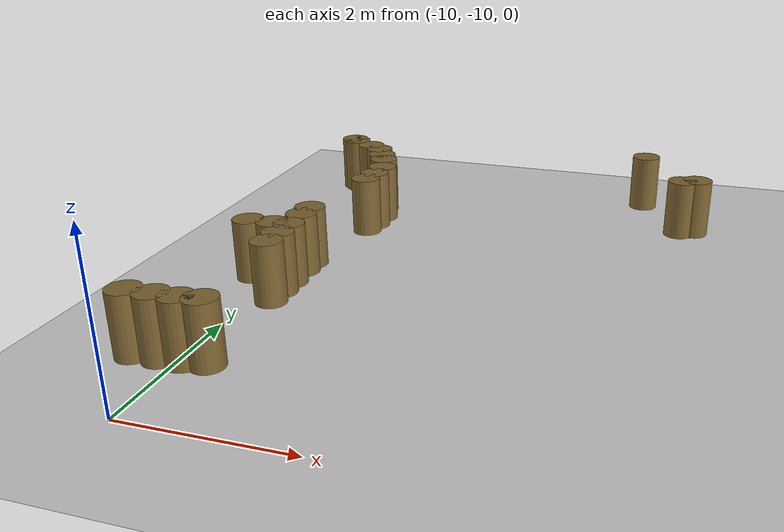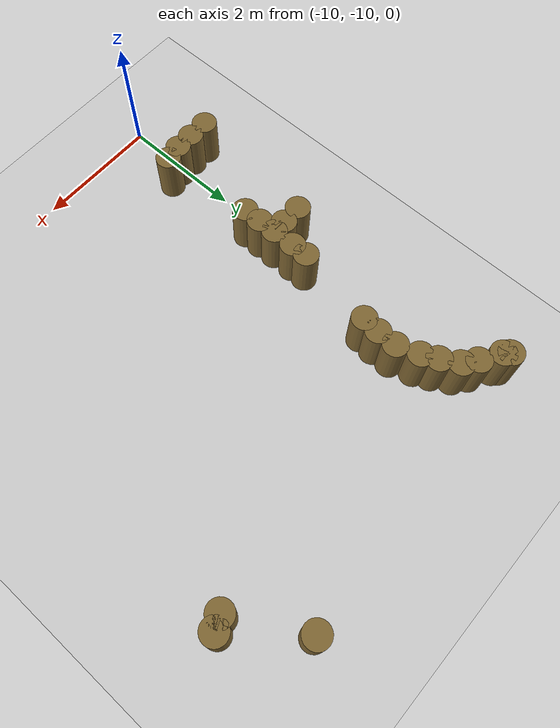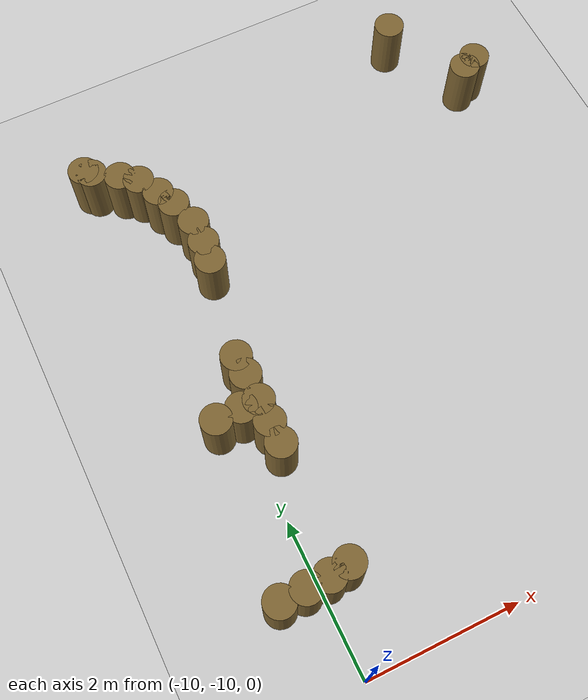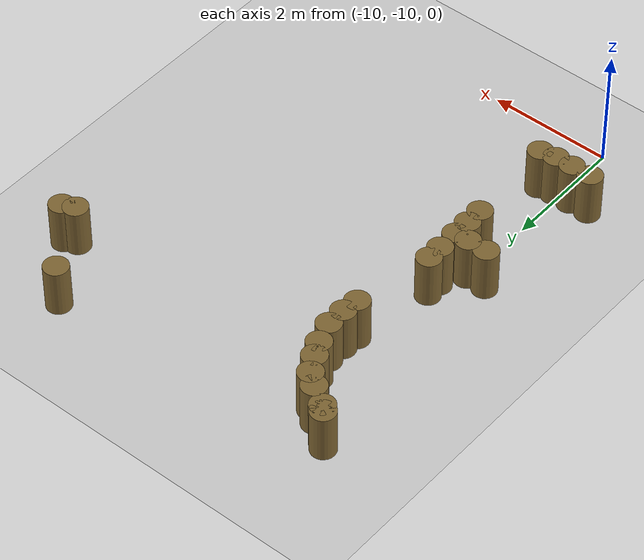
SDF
<sdf version="1.7">
 <world name="default">
  <model name="ground_plane">
   <static>1</static>
   <link name="link">
    <collision name="collision">
     <geometry><plane><normal>0 0 1</normal><size>100 100</size></plane></geometry>
     <surface><friction><ode><mu>100</mu><mu2>50</mu2></ode></friction></surface>
    </collision>
    <visual name="visual">
     <cast_shadows>0</cast_shadows>
     <geometry><plane><normal>0 0 1</normal><size>100 100</size></plane></geometry>
     <material>
      <script><uri>file://media/materials/scripts/gazebo.material</uri><name>Gazebo/Grey</name></script>
     </material>
    </visual>
   </link>
  </model>
  <model name="mini_cylinder_0_clone_0_clone_clone_clone_clone_3_clone_11">
   <link name="link">
    <inertial>
     <mass>1</mass>
     <inertia><ixx>0.145833</ixx><ixy>0</ixy><ixz>0</ixz><iyy>0.145833</iyy><iyz>0</iyz><izz>0.125</izz></inertia>
    </inertial>
    <visual name="visual">
     <geometry><cylinder><radius>0.2</radius><length>0.8</length></cylinder></geometry>
     <material>
      <script><name>Gazebo/Grey</name><uri>file://media/materials/scripts/gazebo.material</uri></script>
      <shader type="vertex"><normal_map>__default__</normal_map></shader>
      <ambient>0.5 0.4 0.2 1</ambient>
      <diffuse>0.7 0.7 0.7 1</diffuse>
      <specular>0.01 0.01 0.01 1</specular>
      <emissive>0 0 0 1</emissive>
     </material>
    </visual>
    <collision name="collision">
     <geometry><cylinder><radius>0.2</radius><length>0.8</length></cylinder></geometry>
     <surface>
      <friction>
       <ode><mu>1</mu><mu2>1</mu2><fdir1>0 0 0</fdir1><slip1>0</slip1><slip2>0</slip2></ode>
       <torsional>
        <coefficient>1</coefficient>
        <patch_radius>0</patch_radius>
        <surface_radius>0</surface_radius>
        <use_patch_radius>1</use_patch_radius>
        <ode><slip>0</slip></ode>
       </torsional>
      </friction>
      <bounce><restitution_coefficient>0</restitution_coefficient><threshold>1e+06</threshold></bounce>
      <contact>
       <collide_without_contact>0</collide_without_contact>
       <collide_without_contact_bitmask>1</collide_without_contact_bitmask>
       <collide_bitmask>1</collide_bitmask>
       <ode>
        <soft_cfm>0</soft_cfm>
        <soft_erp>0.2</soft_erp>
        <kp>1e+13</kp>
        <kd>1</kd>
        <max_vel>0.01</max_vel>
        <min_depth>0</min_depth>
       </ode>
       <bullet>
        <split_impulse>1</split_impulse>
        <split_impulse_penetration_threshold>-0.01</split_impulse_penetration_threshold>
        <soft_cfm>0</soft_cfm>
        <soft_erp>0.2</soft_erp>
        <kp>1e+13</kp>
        <kd>1</kd>
       </bullet>
      </contact>
     </surface>
    </collision>
   </link>
   <static>1</static>
   <pose>-10.3827 -2.98135 0.4 0 -0 0</pose>
  </model>
  <model name="mini_cylinder_0_clone_0_clone_clone_clone_clone_3_clone_12">
   <link name="link">
    <inertial>
     <mass>1</mass>
     <inertia><ixx>0.145833</ixx><ixy>0</ixy><ixz>0</ixz><iyy>0.145833</iyy><iyz>0</iyz><izz>0.125</izz></inertia>
    </inertial>
    <visual name="visual">
     <geometry><cylinder><radius>0.2</radius><length>0.8</length></cylinder></geometry>
     <material>
      <script><name>Gazebo/Grey</name><uri>file://media/materials/scripts/gazebo.material</uri></script>
      <shader type="vertex"><normal_map>__default__</normal_map></shader>
      <ambient>0.5 0.4 0.2 1</ambient>
      <diffuse>0.7 0.7 0.7 1</diffuse>
      <specular>0.01 0.01 0.01 1</specular>
      <emissive>0 0 0 1</emissive>
     </material>
    </visual>
    <collision name="collision">
     <geometry><cylinder><radius>0.2</radius><length>0.8</length></cylinder></geometry>
     <surface>
      <friction>
       <ode><mu>1</mu><mu2>1</mu2><fdir1>0 0 0</fdir1><slip1>0</slip1><slip2>0</slip2></ode>
       <torsional>
        <coefficient>1</coefficient>
        <patch_radius>0</patch_radius>
        <surface_radius>0</surface_radius>
        <use_patch_radius>1</use_patch_radius>
        <ode><slip>0</slip></ode>
       </torsional>
      </friction>
      <bounce><restitution_coefficient>0</restitution_coefficient><threshold>1e+06</threshold></bounce>
      <contact>
       <collide_without_contact>0</collide_without_contact>
       <collide_without_contact_bitmask>1</collide_without_contact_bitmask>
       <collide_bitmask>1</collide_bitmask>
       <ode>
        <soft_cfm>0</soft_cfm>
        <soft_erp>0.2</soft_erp>
        <kp>1e+13</kp>
        <kd>1</kd>
        <max_vel>0.01</max_vel>
        <min_depth>0</min_depth>
       </ode>
       <bullet>
        <split_impulse>1</split_impulse>
        <split_impulse_penetration_threshold>-0.01</split_impulse_penetration_threshold>
        <soft_cfm>0</soft_cfm>
        <soft_erp>0.2</soft_erp>
        <kp>1e+13</kp>
        <kd>1</kd>
       </bullet>
      </contact>
     </surface>
    </collision>
   </link>
   <static>1</static>
   <pose>-10.4606 -2.90239 0.4 0 -0 0</pose>
  </model>
  <model name="mini_cylinder_0_clone_0_clone_clone_clone_clone_3_clone_13">
   <link name="link">
    <inertial>
     <mass>1</mass>
     <inertia><ixx>0.145833</ixx><ixy>0</ixy><ixz>0</ixz><iyy>0.145833</iyy><iyz>0</iyz><izz>0.125</izz></inertia>
    </inertial>
    <visual name="visual">
     <geometry><cylinder><radius>0.2</radius><length>0.8</length></cylinder></geometry>
     <material>
      <script><name>Gazebo/Grey</name><uri>file://media/materials/scripts/gazebo.material</uri></script>
      <shader type="vertex"><normal_map>__default__</normal_map></shader>
      <ambient>0.5 0.4 0.2 1</ambient>
      <diffuse>0.7 0.7 0.7 1</diffuse>
      <specular>0.01 0.01 0.01 1</specular>
      <emissive>0 0 0 1</emissive>
     </material>
    </visual>
    <collision name="collision">
     <geometry><cylinder><radius>0.2</radius><length>0.8</length></cylinder></geometry>
     <surface>
      <friction>
       <ode><mu>1</mu><mu2>1</mu2><fdir1>0 0 0</fdir1><slip1>0</slip1><slip2>0</slip2></ode>
       <torsional>
        <coefficient>1</coefficient>
        <patch_radius>0</patch_radius>
        <surface_radius>0</surface_radius>
        <use_patch_radius>1</use_patch_radius>
        <ode><slip>0</slip></ode>
       </torsional>
      </friction>
      <bounce><restitution_coefficient>0</restitution_coefficient><threshold>1e+06</threshold></bounce>
      <contact>
       <collide_without_contact>0</collide_without_contact>
       <collide_without_contact_bitmask>1</collide_without_contact_bitmask>
       <collide_bitmask>1</collide_bitmask>
       <ode>
        <soft_cfm>0</soft_cfm>
        <soft_erp>0.2</soft_erp>
        <kp>1e+13</kp>
        <kd>1</kd>
        <max_vel>0.01</max_vel>
        <min_depth>0</min_depth>
       </ode>
       <bullet>
        <split_impulse>1</split_impulse>
        <split_impulse_penetration_threshold>-0.01</split_impulse_penetration_threshold>
        <soft_cfm>0</soft_cfm>
        <soft_erp>0.2</soft_erp>
        <kp>1e+13</kp>
        <kd>1</kd>
       </bullet>
      </contact>
     </surface>
    </collision>
   </link>
   <static>1</static>
   <pose>-10.069 -3.1775 0.4 0 -0 0</pose>
  </model>
  <model name="mini_cylinder_0_clone_0_clone_clone_clone_clone_3_clone_14">
   <link name="link">
    <inertial>
     <mass>1</mass>
     <inertia><ixx>0.145833</ixx><ixy>0</ixy><ixz>0</ixz><iyy>0.145833</iyy><iyz>0</iyz><izz>0.125</izz></inertia>
    </inertial>
    <visual name="visual">
     <geometry><cylinder><radius>0.2</radius><length>0.8</length></cylinder></geometry>
     <material>
      <script><name>Gazebo/Grey</name><uri>file://media/materials/scripts/gazebo.material</uri></script>
      <shader type="vertex"><normal_map>__default__</normal_map></shader>
      <ambient>0.5 0.4 0.2 1</ambient>
      <diffuse>0.7 0.7 0.7 1</diffuse>
      <specular>0.01 0.01 0.01 1</specular>
      <emissive>0 0 0 1</emissive>
     </material>
    </visual>
    <collision name="collision">
     <geometry><cylinder><radius>0.2</radius><length>0.8</length></cylinder></geometry>
     <surface>
      <friction>
       <ode><mu>1</mu><mu2>1</mu2><fdir1>0 0 0</fdir1><slip1>0</slip1><slip2>0</slip2></ode>
       <torsional>
        <coefficient>1</coefficient>
        <patch_radius>0</patch_radius>
        <surface_radius>0</surface_radius>
        <use_patch_radius>1</use_patch_radius>
        <ode><slip>0</slip></ode>
       </torsional>
      </friction>
      <bounce><restitution_coefficient>0</restitution_coefficient><threshold>1e+06</threshold></bounce>
      <contact>
       <collide_without_contact>0</collide_without_contact>
       <collide_without_contact_bitmask>1</collide_without_contact_bitmask>
       <collide_bitmask>1</collide_bitmask>
       <ode>
        <soft_cfm>0</soft_cfm>
        <soft_erp>0.2</soft_erp>
        <kp>1e+13</kp>
        <kd>1</kd>
        <max_vel>0.01</max_vel>
        <min_depth>0</min_depth>
       </ode>
       <bullet>
        <split_impulse>1</split_impulse>
        <split_impulse_penetration_threshold>-0.01</split_impulse_penetration_threshold>
        <soft_cfm>0</soft_cfm>
        <soft_erp>0.2</soft_erp>
        <kp>1e+13</kp>
        <kd>1</kd>
       </bullet>
      </contact>
     </surface>
    </collision>
   </link>
   <static>1</static>
   <pose>-9.87176 -3.33436 0.4 0 -0 0</pose>
  </model>
  <model name="mini_cylinder_0_clone_0_clone_clone_clone_clone_3_clone_15">
   <link name="link">
    <inertial>
     <mass>1</mass>
     <inertia><ixx>0.145833</ixx><ixy>0</ixy><ixz>0</ixz><iyy>0.145833</iyy><iyz>0</iyz><izz>0.125</izz></inertia>
    </inertial>
    <visual name="visual">
     <geometry><cylinder><radius>0.2</radius><length>0.8</length></cylinder></geometry>
     <material>
      <script><name>Gazebo/Grey</name><uri>file://media/materials/scripts/gazebo.material</uri></script>
      <shader type="vertex"><normal_map>__default__</normal_map></shader>
      <ambient>0.5 0.4 0.2 1</ambient>
      <diffuse>0.7 0.7 0.7 1</diffuse>
      <specular>0.01 0.01 0.01 1</specular>
      <emissive>0 0 0 1</emissive>
     </material>
    </visual>
    <collision name="collision">
     <geometry><cylinder><radius>0.2</radius><length>0.8</length></cylinder></geometry>
     <surface>
      <friction>
       <ode><mu>1</mu><mu2>1</mu2><fdir1>0 0 0</fdir1><slip1>0</slip1><slip2>0</slip2></ode>
       <torsional>
        <coefficient>1</coefficient>
        <patch_radius>0</patch_radius>
        <surface_radius>0</surface_radius>
        <use_patch_radius>1</use_patch_radius>
        <ode><slip>0</slip></ode>
       </torsional>
      </friction>
      <bounce><restitution_coefficient>0</restitution_coefficient><threshold>1e+06</threshold></bounce>
      <contact>
       <collide_without_contact>0</collide_without_contact>
       <collide_without_contact_bitmask>1</collide_without_contact_bitmask>
       <collide_bitmask>1</collide_bitmask>
       <ode>
        <soft_cfm>0</soft_cfm>
        <soft_erp>0.2</soft_erp>
        <kp>1e+13</kp>
        <kd>1</kd>
        <max_vel>0.01</max_vel>
        <min_depth>0</min_depth>
       </ode>
       <bullet>
        <split_impulse>1</split_impulse>
        <split_impulse_penetration_threshold>-0.01</split_impulse_penetration_threshold>
        <soft_cfm>0</soft_cfm>
        <soft_erp>0.2</soft_erp>
        <kp>1e+13</kp>
        <kd>1</kd>
       </bullet>
      </contact>
     </surface>
    </collision>
   </link>
   <static>1</static>
   <pose>-9.71455 -3.60876 0.4 0 -0 0</pose>
  </model>
  <model name="mini_cylinder_0_clone_0_clone_clone_clone_clone_3_clone_16">
   <link name="link">
    <inertial>
     <mass>1</mass>
     <inertia><ixx>0.145833</ixx><ixy>0</ixy><ixz>0</ixz><iyy>0.145833</iyy><iyz>0</iyz><izz>0.125</izz></inertia>
    </inertial>
    <visual name="visual">
     <geometry><cylinder><radius>0.2</radius><length>0.8</length></cylinder></geometry>
     <material>
      <script><name>Gazebo/Grey</name><uri>file://media/materials/scripts/gazebo.material</uri></script>
      <shader type="vertex"><normal_map>__default__</normal_map></shader>
      <ambient>0.5 0.4 0.2 1</ambient>
      <diffuse>0.7 0.7 0.7 1</diffuse>
      <specular>0.01 0.01 0.01 1</specular>
      <emissive>0 0 0 1</emissive>
     </material>
    </visual>
    <collision name="collision">
     <geometry><cylinder><radius>0.2</radius><length>0.8</length></cylinder></geometry>
     <surface>
      <friction>
       <ode><mu>1</mu><mu2>1</mu2><fdir1>0 0 0</fdir1><slip1>0</slip1><slip2>0</slip2></ode>
       <torsional>
        <coefficient>1</coefficient>
        <patch_radius>0</patch_radius>
        <surface_radius>0</surface_radius>
        <use_patch_radius>1</use_patch_radius>
        <ode><slip>0</slip></ode>
       </torsional>
      </friction>
      <bounce><restitution_coefficient>0</restitution_coefficient><threshold>1e+06</threshold></bounce>
      <contact>
       <collide_without_contact>0</collide_without_contact>
       <collide_without_contact_bitmask>1</collide_without_contact_bitmask>
       <collide_bitmask>1</collide_bitmask>
       <ode>
        <soft_cfm>0</soft_cfm>
        <soft_erp>0.2</soft_erp>
        <kp>1e+13</kp>
        <kd>1</kd>
        <max_vel>0.01</max_vel>
        <min_depth>0</min_depth>
       </ode>
       <bullet>
        <split_impulse>1</split_impulse>
        <split_impulse_penetration_threshold>-0.01</split_impulse_penetration_threshold>
        <soft_cfm>0</soft_cfm>
        <soft_erp>0.2</soft_erp>
        <kp>1e+13</kp>
        <kd>1</kd>
       </bullet>
      </contact>
     </surface>
    </collision>
   </link>
   <static>1</static>
   <pose>-9.59735 -3.84457 0.4 0 -0 0</pose>
  </model>
  <model name="mini_cylinder_0_clone_0_clone_clone_clone_clone_3_clone_17">
   <link name="link">
    <inertial>
     <mass>1</mass>
     <inertia><ixx>0.145833</ixx><ixy>0</ixy><ixz>0</ixz><iyy>0.145833</iyy><iyz>0</iyz><izz>0.125</izz></inertia>
    </inertial>
    <visual name="visual">
     <geometry><cylinder><radius>0.2</radius><length>0.8</length></cylinder></geometry>
     <material>
      <script><name>Gazebo/Grey</name><uri>file://media/materials/scripts/gazebo.material</uri></script>
      <shader type="vertex"><normal_map>__default__</normal_map></shader>
      <ambient>0.5 0.4 0.2 1</ambient>
      <diffuse>0.7 0.7 0.7 1</diffuse>
      <specular>0.01 0.01 0.01 1</specular>
      <emissive>0 0 0 1</emissive>
     </material>
    </visual>
    <collision name="collision">
     <geometry><cylinder><radius>0.2</radius><length>0.8</length></cylinder></geometry>
     <surface>
      <friction>
       <ode><mu>1</mu><mu2>1</mu2><fdir1>0 0 0</fdir1><slip1>0</slip1><slip2>0</slip2></ode>
       <torsional>
        <coefficient>1</coefficient>
        <patch_radius>0</patch_radius>
        <surface_radius>0</surface_radius>
        <use_patch_radius>1</use_patch_radius>
        <ode><slip>0</slip></ode>
       </torsional>
      </friction>
      <bounce><restitution_coefficient>0</restitution_coefficient><threshold>1e+06</threshold></bounce>
      <contact>
       <collide_without_contact>0</collide_without_contact>
       <collide_without_contact_bitmask>1</collide_without_contact_bitmask>
       <collide_bitmask>1</collide_bitmask>
       <ode>
        <soft_cfm>0</soft_cfm>
        <soft_erp>0.2</soft_erp>
        <kp>1e+13</kp>
        <kd>1</kd>
        <max_vel>0.01</max_vel>
        <min_depth>0</min_depth>
       </ode>
       <bullet>
        <split_impulse>1</split_impulse>
        <split_impulse_penetration_threshold>-0.01</split_impulse_penetration_threshold>
        <soft_cfm>0</soft_cfm>
        <soft_erp>0.2</soft_erp>
        <kp>1e+13</kp>
        <kd>1</kd>
       </bullet>
      </contact>
     </surface>
    </collision>
   </link>
   <static>1</static>
   <pose>-9.47945 -4.1983 0.4 0 -0 0</pose>
  </model>
  <model name="mini_cylinder_0_clone_0_clone_clone_clone_clone_3_clone_18">
   <link name="link">
    <inertial>
     <mass>1</mass>
     <inertia><ixx>0.145833</ixx><ixy>0</ixy><ixz>0</ixz><iyy>0.145833</iyy><iyz>0</iyz><izz>0.125</izz></inertia>
    </inertial>
    <visual name="visual">
     <geometry><cylinder><radius>0.2</radius><length>0.8</length></cylinder></geometry>
     <material>
      <script><name>Gazebo/Grey</name><uri>file://media/materials/scripts/gazebo.material</uri></script>
      <shader type="vertex"><normal_map>__default__</normal_map></shader>
      <ambient>0.5 0.4 0.2 1</ambient>
      <diffuse>0.7 0.7 0.7 1</diffuse>
      <specular>0.01 0.01 0.01 1</specular>
      <emissive>0 0 0 1</emissive>
     </material>
    </visual>
    <collision name="collision">
     <geometry><cylinder><radius>0.2</radius><length>0.8</length></cylinder></geometry>
     <surface>
      <friction>
       <ode><mu>1</mu><mu2>1</mu2><fdir1>0 0 0</fdir1><slip1>0</slip1><slip2>0</slip2></ode>
       <torsional>
        <coefficient>1</coefficient>
        <patch_radius>0</patch_radius>
        <surface_radius>0</surface_radius>
        <use_patch_radius>1</use_patch_radius>
        <ode><slip>0</slip></ode>
       </torsional>
      </friction>
      <bounce><restitution_coefficient>0</restitution_coefficient><threshold>1e+06</threshold></bounce>
      <contact>
       <collide_without_contact>0</collide_without_contact>
       <collide_without_contact_bitmask>1</collide_without_contact_bitmask>
       <collide_bitmask>1</collide_bitmask>
       <ode>
        <soft_cfm>0</soft_cfm>
        <soft_erp>0.2</soft_erp>
        <kp>1e+13</kp>
        <kd>1</kd>
        <max_vel>0.01</max_vel>
        <min_depth>0</min_depth>
       </ode>
       <bullet>
        <split_impulse>1</split_impulse>
        <split_impulse_penetration_threshold>-0.01</split_impulse_penetration_threshold>
        <soft_cfm>0</soft_cfm>
        <soft_erp>0.2</soft_erp>
        <kp>1e+13</kp>
        <kd>1</kd>
       </bullet>
      </contact>
     </surface>
    </collision>
   </link>
   <static>1</static>
   <pose>-9.47945 -4.512 0.4 0 -0 0</pose>
  </model>
  <model name="mini_cylinder_0_clone_0_clone_clone_clone_clone_3_clone_20_clone_105">
   <link name="link">
    <inertial>
     <mass>1</mass>
     <inertia><ixx>0.145833</ixx><ixy>0</ixy><ixz>0</ixz><iyy>0.145833</iyy><iyz>0</iyz><izz>0.125</izz></inertia>
    </inertial>
    <visual name="visual">
     <geometry><cylinder><radius>0.2</radius><length>0.8</length></cylinder></geometry>
     <material>
      <script><name>Gazebo/Grey</name><uri>file://media/materials/scripts/gazebo.material</uri></script>
      <shader type="vertex"><normal_map>__default__</normal_map></shader>
      <ambient>0.5 0.4 0.2 1</ambient>
      <diffuse>0.7 0.7 0.7 1</diffuse>
      <specular>0.01 0.01 0.01 1</specular>
      <emissive>0 0 0 1</emissive>
     </material>
    </visual>
    <collision name="collision">
     <geometry><cylinder><radius>0.2</radius><length>0.8</length></cylinder></geometry>
     <surface>
      <friction>
       <ode><mu>1</mu><mu2>1</mu2><fdir1>0 0 0</fdir1><slip1>0</slip1><slip2>0</slip2></ode>
       <torsional>
        <coefficient>1</coefficient>
        <patch_radius>0</patch_radius>
        <surface_radius>0</surface_radius>
        <use_patch_radius>1</use_patch_radius>
        <ode><slip>0</slip></ode>
       </torsional>
      </friction>
      <bounce><restitution_coefficient>0</restitution_coefficient><threshold>1e+06</threshold></bounce>
      <contact>
       <collide_without_contact>0</collide_without_contact>
       <collide_without_contact_bitmask>1</collide_without_contact_bitmask>
       <collide_bitmask>1</collide_bitmask>
       <ode>
        <soft_cfm>0</soft_cfm>
        <soft_erp>0.2</soft_erp>
        <kp>1e+13</kp>
        <kd>1</kd>
        <max_vel>0.01</max_vel>
        <min_depth>0</min_depth>
       </ode>
       <bullet>
        <split_impulse>1</split_impulse>
        <split_impulse_penetration_threshold>-0.01</split_impulse_penetration_threshold>
        <soft_cfm>0</soft_cfm>
        <soft_erp>0.2</soft_erp>
        <kp>1e+13</kp>
        <kd>1</kd>
       </bullet>
      </contact>
     </surface>
    </collision>
   </link>
   <static>1</static>
   <pose>-9.51001 -4.78474 0.4 0 -0 0</pose>
  </model>
  <model name="mini_cylinder_0_clone_0_clone_clone_clone_clone_3_clone_20_clone_119">
   <link name="link">
    <inertial>
     <mass>1</mass>
     <inertia><ixx>0.145833</ixx><ixy>0</ixy><ixz>0</ixz><iyy>0.145833</iyy><iyz>0</iyz><izz>0.125</izz></inertia>
    </inertial>
    <visual name="visual">
     <geometry><cylinder><radius>0.2</radius><length>0.8</length></cylinder></geometry>
     <material>
      <script><name>Gazebo/Grey</name><uri>file://media/materials/scripts/gazebo.material</uri></script>
      <shader type="vertex"><normal_map>__default__</normal_map></shader>
      <ambient>0.5 0.4 0.2 1</ambient>
      <diffuse>0.7 0.7 0.7 1</diffuse>
      <specular>0.01 0.01 0.01 1</specular>
      <emissive>0 0 0 1</emissive>
     </material>
    </visual>
    <collision name="collision">
     <geometry><cylinder><radius>0.2</radius><length>0.8</length></cylinder></geometry>
     <surface>
      <friction>
       <ode><mu>1</mu><mu2>1</mu2><fdir1>0 0 0</fdir1><slip1>0</slip1><slip2>0</slip2></ode>
       <torsional>
        <coefficient>1</coefficient>
        <patch_radius>0</patch_radius>
        <surface_radius>0</surface_radius>
        <use_patch_radius>1</use_patch_radius>
        <ode><slip>0</slip></ode>
       </torsional>
      </friction>
      <bounce><restitution_coefficient>0</restitution_coefficient><threshold>1e+06</threshold></bounce>
      <contact>
       <collide_without_contact>0</collide_without_contact>
       <collide_without_contact_bitmask>1</collide_without_contact_bitmask>
       <collide_bitmask>1</collide_bitmask>
       <ode>
        <soft_cfm>0</soft_cfm>
        <soft_erp>0.2</soft_erp>
        <kp>1e+13</kp>
        <kd>1</kd>
        <max_vel>0.01</max_vel>
        <min_depth>0</min_depth>
       </ode>
       <bullet>
        <split_impulse>1</split_impulse>
        <split_impulse_penetration_threshold>-0.01</split_impulse_penetration_threshold>
        <soft_cfm>0</soft_cfm>
        <soft_erp>0.2</soft_erp>
        <kp>1e+13</kp>
        <kd>1</kd>
       </bullet>
      </contact>
     </surface>
    </collision>
   </link>
   <static>1</static>
   <pose>-10.2965 -6.71472 0.4 0 -0 0</pose>
  </model>
  <model name="mini_cylinder_0_clone_0_clone_clone_clone_clone_3_clone_20_clone_120">
   <link name="link">
    <inertial>
     <mass>1</mass>
     <inertia><ixx>0.145833</ixx><ixy>0</ixy><ixz>0</ixz><iyy>0.145833</iyy><iyz>0</iyz><izz>0.125</izz></inertia>
    </inertial>
    <visual name="visual">
     <geometry><cylinder><radius>0.2</radius><length>0.8</length></cylinder></geometry>
     <material>
      <script><name>Gazebo/Grey</name><uri>file://media/materials/scripts/gazebo.material</uri></script>
      <shader type="vertex"><normal_map>__default__</normal_map></shader>
      <ambient>0.5 0.4 0.2 1</ambient>
      <diffuse>0.7 0.7 0.7 1</diffuse>
      <specular>0.01 0.01 0.01 1</specular>
      <emissive>0 0 0 1</emissive>
     </material>
    </visual>
    <collision name="collision">
     <geometry><cylinder><radius>0.2</radius><length>0.8</length></cylinder></geometry>
     <surface>
      <friction>
       <ode><mu>1</mu><mu2>1</mu2><fdir1>0 0 0</fdir1><slip1>0</slip1><slip2>0</slip2></ode>
       <torsional>
        <coefficient>1</coefficient>
        <patch_radius>0</patch_radius>
        <surface_radius>0</surface_radius>
        <use_patch_radius>1</use_patch_radius>
        <ode><slip>0</slip></ode>
       </torsional>
      </friction>
      <bounce><restitution_coefficient>0</restitution_coefficient><threshold>1e+06</threshold></bounce>
      <contact>
       <collide_without_contact>0</collide_without_contact>
       <collide_without_contact_bitmask>1</collide_without_contact_bitmask>
       <collide_bitmask>1</collide_bitmask>
       <ode>
        <soft_cfm>0</soft_cfm>
        <soft_erp>0.2</soft_erp>
        <kp>1e+13</kp>
        <kd>1</kd>
        <max_vel>0.01</max_vel>
        <min_depth>0</min_depth>
       </ode>
       <bullet>
        <split_impulse>1</split_impulse>
        <split_impulse_penetration_threshold>-0.01</split_impulse_penetration_threshold>
        <soft_cfm>0</soft_cfm>
        <soft_erp>0.2</soft_erp>
        <kp>1e+13</kp>
        <kd>1</kd>
       </bullet>
      </contact>
     </surface>
    </collision>
   </link>
   <static>1</static>
   <pose>-9.97185 -6.71021 0.4 0 -0 0</pose>
  </model>
  <model name="mini_cylinder_0_clone_0_clone_clone_clone_clone_3_clone_20_clone_121">
   <link name="link">
    <inertial>
     <mass>1</mass>
     <inertia><ixx>0.145833</ixx><ixy>0</ixy><ixz>0</ixz><iyy>0.145833</iyy><iyz>0</iyz><izz>0.125</izz></inertia>
    </inertial>
    <visual name="visual">
     <geometry><cylinder><radius>0.2</radius><length>0.8</length></cylinder></geometry>
     <material>
      <script><name>Gazebo/Grey</name><uri>file://media/materials/scripts/gazebo.material</uri></script>
      <shader type="vertex"><normal_map>__default__</normal_map></shader>
      <ambient>0.5 0.4 0.2 1</ambient>
      <diffuse>0.7 0.7 0.7 1</diffuse>
      <specular>0.01 0.01 0.01 1</specular>
      <emissive>0 0 0 1</emissive>
     </material>
    </visual>
    <collision name="collision">
     <geometry><cylinder><radius>0.2</radius><length>0.8</length></cylinder></geometry>
     <surface>
      <friction>
       <ode><mu>1</mu><mu2>1</mu2><fdir1>0 0 0</fdir1><slip1>0</slip1><slip2>0</slip2></ode>
       <torsional>
        <coefficient>1</coefficient>
        <patch_radius>0</patch_radius>
        <surface_radius>0</surface_radius>
        <use_patch_radius>1</use_patch_radius>
        <ode><slip>0</slip></ode>
       </torsional>
      </friction>
      <bounce><restitution_coefficient>0</restitution_coefficient><threshold>1e+06</threshold></bounce>
      <contact>
       <collide_without_contact>0</collide_without_contact>
       <collide_without_contact_bitmask>1</collide_without_contact_bitmask>
       <collide_bitmask>1</collide_bitmask>
       <ode>
        <soft_cfm>0</soft_cfm>
        <soft_erp>0.2</soft_erp>
        <kp>1e+13</kp>
        <kd>1</kd>
        <max_vel>0.01</max_vel>
        <min_depth>0</min_depth>
       </ode>
       <bullet>
        <split_impulse>1</split_impulse>
        <split_impulse_penetration_threshold>-0.01</split_impulse_penetration_threshold>
        <soft_cfm>0</soft_cfm>
        <soft_erp>0.2</soft_erp>
        <kp>1e+13</kp>
        <kd>1</kd>
       </bullet>
      </contact>
     </surface>
    </collision>
   </link>
   <static>1</static>
   <pose>-9.74426 -6.70637 0.4 0 -0 0</pose>
  </model>
  <model name="mini_cylinder_0_clone_0_clone_clone_clone_clone_3_clone_20_clone_122">
   <link name="link">
    <inertial>
     <mass>1</mass>
     <inertia><ixx>0.145833</ixx><ixy>0</ixy><ixz>0</ixz><iyy>0.145833</iyy><iyz>0</iyz><izz>0.125</izz></inertia>
    </inertial>
    <visual name="visual">
     <geometry><cylinder><radius>0.2</radius><length>0.8</length></cylinder></geometry>
     <material>
      <script><name>Gazebo/Grey</name><uri>file://media/materials/scripts/gazebo.material</uri></script>
      <shader type="vertex"><normal_map>__default__</normal_map></shader>
      <ambient>0.5 0.4 0.2 1</ambient>
      <diffuse>0.7 0.7 0.7 1</diffuse>
      <specular>0.01 0.01 0.01 1</specular>
      <emissive>0 0 0 1</emissive>
     </material>
    </visual>
    <collision name="collision">
     <geometry><cylinder><radius>0.2</radius><length>0.8</length></cylinder></geometry>
     <surface>
      <friction>
       <ode><mu>1</mu><mu2>1</mu2><fdir1>0 0 0</fdir1><slip1>0</slip1><slip2>0</slip2></ode>
       <torsional>
        <coefficient>1</coefficient>
        <patch_radius>0</patch_radius>
        <surface_radius>0</surface_radius>
        <use_patch_radius>1</use_patch_radius>
        <ode><slip>0</slip></ode>
       </torsional>
      </friction>
      <bounce><restitution_coefficient>0</restitution_coefficient><threshold>1e+06</threshold></bounce>
      <contact>
       <collide_without_contact>0</collide_without_contact>
       <collide_without_contact_bitmask>1</collide_without_contact_bitmask>
       <collide_bitmask>1</collide_bitmask>
       <ode>
        <soft_cfm>0</soft_cfm>
        <soft_erp>0.2</soft_erp>
        <kp>1e+13</kp>
        <kd>1</kd>
        <max_vel>0.01</max_vel>
        <min_depth>0</min_depth>
       </ode>
       <bullet>
        <split_impulse>1</split_impulse>
        <split_impulse_penetration_threshold>-0.01</split_impulse_penetration_threshold>
        <soft_cfm>0</soft_cfm>
        <soft_erp>0.2</soft_erp>
        <kp>1e+13</kp>
        <kd>1</kd>
       </bullet>
      </contact>
     </surface>
    </collision>
   </link>
   <static>1</static>
   <pose>-9.7542 -6.08907 0.4 0 -0 0</pose>
  </model>
  <model name="mini_cylinder_0_clone_0_clone_clone_clone_clone_3_clone_20_clone_123">
   <link name="link">
    <inertial>
     <mass>1</mass>
     <inertia><ixx>0.145833</ixx><ixy>0</ixy><ixz>0</ixz><iyy>0.145833</iyy><iyz>0</iyz><izz>0.125</izz></inertia>
    </inertial>
    <visual name="visual">
     <geometry><cylinder><radius>0.2</radius><length>0.8</length></cylinder></geometry>
     <material>
      <script><name>Gazebo/Grey</name><uri>file://media/materials/scripts/gazebo.material</uri></script>
      <shader type="vertex"><normal_map>__default__</normal_map></shader>
      <ambient>0.5 0.4 0.2 1</ambient>
      <diffuse>0.7 0.7 0.7 1</diffuse>
      <specular>0.01 0.01 0.01 1</specular>
      <emissive>0 0 0 1</emissive>
     </material>
    </visual>
    <collision name="collision">
     <geometry><cylinder><radius>0.2</radius><length>0.8</length></cylinder></geometry>
     <surface>
      <friction>
       <ode><mu>1</mu><mu2>1</mu2><fdir1>0 0 0</fdir1><slip1>0</slip1><slip2>0</slip2></ode>
       <torsional>
        <coefficient>1</coefficient>
        <patch_radius>0</patch_radius>
        <surface_radius>0</surface_radius>
        <use_patch_radius>1</use_patch_radius>
        <ode><slip>0</slip></ode>
       </torsional>
      </friction>
      <bounce><restitution_coefficient>0</restitution_coefficient><threshold>1e+06</threshold></bounce>
      <contact>
       <collide_without_contact>0</collide_without_contact>
       <collide_without_contact_bitmask>1</collide_without_contact_bitmask>
       <collide_bitmask>1</collide_bitmask>
       <ode>
        <soft_cfm>0</soft_cfm>
        <soft_erp>0.2</soft_erp>
        <kp>1e+13</kp>
        <kd>1</kd>
        <max_vel>0.01</max_vel>
        <min_depth>0</min_depth>
       </ode>
       <bullet>
        <split_impulse>1</split_impulse>
        <split_impulse_penetration_threshold>-0.01</split_impulse_penetration_threshold>
        <soft_cfm>0</soft_cfm>
        <soft_erp>0.2</soft_erp>
        <kp>1e+13</kp>
        <kd>1</kd>
       </bullet>
      </contact>
     </surface>
    </collision>
   </link>
   <static>1</static>
   <pose>-9.75035 -6.34861 0.4 0 -0 0</pose>
  </model>
  <model name="mini_cylinder_0_clone_0_clone_clone_clone_clone_3_clone_20_clone_124">
   <link name="link">
    <inertial>
     <mass>1</mass>
     <inertia><ixx>0.145833</ixx><ixy>0</ixy><ixz>0</ixz><iyy>0.145833</iyy><iyz>0</iyz><izz>0.125</izz></inertia>
    </inertial>
    <visual name="visual">
     <geometry><cylinder><radius>0.2</radius><length>0.8</length></cylinder></geometry>
     <material>
      <script><name>Gazebo/Grey</name><uri>file://media/materials/scripts/gazebo.material</uri></script>
      <shader type="vertex"><normal_map>__default__</normal_map></shader>
      <ambient>0.5 0.4 0.2 1</ambient>
      <diffuse>0.7 0.7 0.7 1</diffuse>
      <specular>0.01 0.01 0.01 1</specular>
      <emissive>0 0 0 1</emissive>
     </material>
    </visual>
    <collision name="collision">
     <geometry><cylinder><radius>0.2</radius><length>0.8</length></cylinder></geometry>
     <surface>
      <friction>
       <ode><mu>1</mu><mu2>1</mu2><fdir1>0 0 0</fdir1><slip1>0</slip1><slip2>0</slip2></ode>
       <torsional>
        <coefficient>1</coefficient>
        <patch_radius>0</patch_radius>
        <surface_radius>0</surface_radius>
        <use_patch_radius>1</use_patch_radius>
        <ode><slip>0</slip></ode>
       </torsional>
      </friction>
      <bounce><restitution_coefficient>0</restitution_coefficient><threshold>1e+06</threshold></bounce>
      <contact>
       <collide_without_contact>0</collide_without_contact>
       <collide_without_contact_bitmask>1</collide_without_contact_bitmask>
       <collide_bitmask>1</collide_bitmask>
       <ode>
        <soft_cfm>0</soft_cfm>
        <soft_erp>0.2</soft_erp>
        <kp>1e+13</kp>
        <kd>1</kd>
        <max_vel>0.01</max_vel>
        <min_depth>0</min_depth>
       </ode>
       <bullet>
        <split_impulse>1</split_impulse>
        <split_impulse_penetration_threshold>-0.01</split_impulse_penetration_threshold>
        <soft_cfm>0</soft_cfm>
        <soft_erp>0.2</soft_erp>
        <kp>1e+13</kp>
        <kd>1</kd>
       </bullet>
      </contact>
     </surface>
    </collision>
   </link>
   <static>1</static>
   <pose>-9.73964 -6.99846 0.4 0 -0 0</pose>
  </model>
  <model name="mini_cylinder_0_clone_0_clone_clone_clone_clone_3_clone_20_clone_125">
   <link name="link">
    <inertial>
     <mass>1</mass>
     <inertia><ixx>0.145833</ixx><ixy>0</ixy><ixz>0</ixz><iyy>0.145833</iyy><iyz>0</iyz><izz>0.125</izz></inertia>
    </inertial>
    <visual name="visual">
     <geometry><cylinder><radius>0.2</radius><length>0.8</length></cylinder></geometry>
     <material>
      <script><name>Gazebo/Grey</name><uri>file://media/materials/scripts/gazebo.material</uri></script>
      <shader type="vertex"><normal_map>__default__</normal_map></shader>
      <ambient>0.5 0.4 0.2 1</ambient>
      <diffuse>0.7 0.7 0.7 1</diffuse>
      <specular>0.01 0.01 0.01 1</specular>
      <emissive>0 0 0 1</emissive>
     </material>
    </visual>
    <collision name="collision">
     <geometry><cylinder><radius>0.2</radius><length>0.8</length></cylinder></geometry>
     <surface>
      <friction>
       <ode><mu>1</mu><mu2>1</mu2><fdir1>0 0 0</fdir1><slip1>0</slip1><slip2>0</slip2></ode>
       <torsional>
        <coefficient>1</coefficient>
        <patch_radius>0</patch_radius>
        <surface_radius>0</surface_radius>
        <use_patch_radius>1</use_patch_radius>
        <ode><slip>0</slip></ode>
       </torsional>
      </friction>
      <bounce><restitution_coefficient>0</restitution_coefficient><threshold>1e+06</threshold></bounce>
      <contact>
       <collide_without_contact>0</collide_without_contact>
       <collide_without_contact_bitmask>1</collide_without_contact_bitmask>
       <collide_bitmask>1</collide_bitmask>
       <ode>
        <soft_cfm>0</soft_cfm>
        <soft_erp>0.2</soft_erp>
        <kp>1e+13</kp>
        <kd>1</kd>
        <max_vel>0.01</max_vel>
        <min_depth>0</min_depth>
       </ode>
       <bullet>
        <split_impulse>1</split_impulse>
        <split_impulse_penetration_threshold>-0.01</split_impulse_penetration_threshold>
        <soft_cfm>0</soft_cfm>
        <soft_erp>0.2</soft_erp>
        <kp>1e+13</kp>
        <kd>1</kd>
       </bullet>
      </contact>
     </surface>
    </collision>
   </link>
   <static>1</static>
   <pose>-9.735 -7.29075 0.4 0 -0 0</pose>
  </model>
  <model name="mini_cylinder_0_clone_0_clone_clone_clone_clone_3_clone_20_clone_131">
   <link name="link">
    <inertial>
     <mass>1</mass>
     <inertia><ixx>0.145833</ixx><ixy>0</ixy><ixz>0</ixz><iyy>0.145833</iyy><iyz>0</iyz><izz>0.125</izz></inertia>
    </inertial>
    <visual name="visual">
     <geometry><cylinder><radius>0.2</radius><length>0.8</length></cylinder></geometry>
     <material>
      <script><name>Gazebo/Grey</name><uri>file://media/materials/scripts/gazebo.material</uri></script>
      <shader type="vertex"><normal_map>__default__</normal_map></shader>
      <ambient>0.5 0.4 0.2 1</ambient>
      <diffuse>0.7 0.7 0.7 1</diffuse>
      <specular>0.01 0.01 0.01 1</specular>
      <emissive>0 0 0 1</emissive>
     </material>
    </visual>
    <collision name="collision">
     <geometry><cylinder><radius>0.2</radius><length>0.8</length></cylinder></geometry>
     <surface>
      <friction>
       <ode><mu>1</mu><mu2>1</mu2><fdir1>0 0 0</fdir1><slip1>0</slip1><slip2>0</slip2></ode>
       <torsional>
        <coefficient>1</coefficient>
        <patch_radius>0</patch_radius>
        <surface_radius>0</surface_radius>
        <use_patch_radius>1</use_patch_radius>
        <ode><slip>0</slip></ode>
       </torsional>
      </friction>
      <bounce><restitution_coefficient>0</restitution_coefficient><threshold>1e+06</threshold></bounce>
      <contact>
       <collide_without_contact>0</collide_without_contact>
       <collide_without_contact_bitmask>1</collide_without_contact_bitmask>
       <collide_bitmask>1</collide_bitmask>
       <ode>
        <soft_cfm>0</soft_cfm>
        <soft_erp>0.2</soft_erp>
        <kp>1e+13</kp>
        <kd>1</kd>
        <max_vel>0.01</max_vel>
        <min_depth>0</min_depth>
       </ode>
       <bullet>
        <split_impulse>1</split_impulse>
        <split_impulse_penetration_threshold>-0.01</split_impulse_penetration_threshold>
        <soft_cfm>0</soft_cfm>
        <soft_erp>0.2</soft_erp>
        <kp>1e+13</kp>
        <kd>1</kd>
       </bullet>
      </contact>
     </surface>
    </collision>
   </link>
   <static>1</static>
   <pose>-9.64567 -8.84913 0.4 0 -0 0</pose>
  </model>
  <model name="mini_cylinder_0_clone_0_clone_clone_clone_clone_3_clone_20_clone_132">
   <link name="link">
    <inertial>
     <mass>1</mass>
     <inertia><ixx>0.145833</ixx><ixy>0</ixy><ixz>0</ixz><iyy>0.145833</iyy><iyz>0</iyz><izz>0.125</izz></inertia>
    </inertial>
    <visual name="visual">
     <geometry><cylinder><radius>0.2</radius><length>0.8</length></cylinder></geometry>
     <material>
      <script><name>Gazebo/Grey</name><uri>file://media/materials/scripts/gazebo.material</uri></script>
      <shader type="vertex"><normal_map>__default__</normal_map></shader>
      <ambient>0.5 0.4 0.2 1</ambient>
      <diffuse>0.7 0.7 0.7 1</diffuse>
      <specular>0.01 0.01 0.01 1</specular>
      <emissive>0 0 0 1</emissive>
     </material>
    </visual>
    <collision name="collision">
     <geometry><cylinder><radius>0.2</radius><length>0.8</length></cylinder></geometry>
     <surface>
      <friction>
       <ode><mu>1</mu><mu2>1</mu2><fdir1>0 0 0</fdir1><slip1>0</slip1><slip2>0</slip2></ode>
       <torsional>
        <coefficient>1</coefficient>
        <patch_radius>0</patch_radius>
        <surface_radius>0</surface_radius>
        <use_patch_radius>1</use_patch_radius>
        <ode><slip>0</slip></ode>
       </torsional>
      </friction>
      <bounce><restitution_coefficient>0</restitution_coefficient><threshold>1e+06</threshold></bounce>
      <contact>
       <collide_without_contact>0</collide_without_contact>
       <collide_without_contact_bitmask>1</collide_without_contact_bitmask>
       <collide_bitmask>1</collide_bitmask>
       <ode>
        <soft_cfm>0</soft_cfm>
        <soft_erp>0.2</soft_erp>
        <kp>1e+13</kp>
        <kd>1</kd>
        <max_vel>0.01</max_vel>
        <min_depth>0</min_depth>
       </ode>
       <bullet>
        <split_impulse>1</split_impulse>
        <split_impulse_penetration_threshold>-0.01</split_impulse_penetration_threshold>
        <soft_cfm>0</soft_cfm>
        <soft_erp>0.2</soft_erp>
        <kp>1e+13</kp>
        <kd>1</kd>
       </bullet>
      </contact>
     </surface>
    </collision>
   </link>
   <static>1</static>
   <pose>-9.90495 -8.88523 0.4 0 -0 0</pose>
  </model>
  <model name="mini_cylinder_0_clone_0_clone_clone_clone_clone_3_clone_20_clone_133">
   <link name="link">
    <inertial>
     <mass>1</mass>
     <inertia><ixx>0.145833</ixx><ixy>0</ixy><ixz>0</ixz><iyy>0.145833</iyy><iyz>0</iyz><izz>0.125</izz></inertia>
    </inertial>
    <visual name="visual">
     <geometry><cylinder><radius>0.2</radius><length>0.8</length></cylinder></geometry>
     <material>
      <script><name>Gazebo/Grey</name><uri>file://media/materials/scripts/gazebo.material</uri></script>
      <shader type="vertex"><normal_map>__default__</normal_map></shader>
      <ambient>0.5 0.4 0.2 1</ambient>
      <diffuse>0.7 0.7 0.7 1</diffuse>
      <specular>0.01 0.01 0.01 1</specular>
      <emissive>0 0 0 1</emissive>
     </material>
    </visual>
    <collision name="collision">
     <geometry><cylinder><radius>0.2</radius><length>0.8</length></cylinder></geometry>
     <surface>
      <friction>
       <ode><mu>1</mu><mu2>1</mu2><fdir1>0 0 0</fdir1><slip1>0</slip1><slip2>0</slip2></ode>
       <torsional>
        <coefficient>1</coefficient>
        <patch_radius>0</patch_radius>
        <surface_radius>0</surface_radius>
        <use_patch_radius>1</use_patch_radius>
        <ode><slip>0</slip></ode>
       </torsional>
      </friction>
      <bounce><restitution_coefficient>0</restitution_coefficient><threshold>1e+06</threshold></bounce>
      <contact>
       <collide_without_contact>0</collide_without_contact>
       <collide_without_contact_bitmask>1</collide_without_contact_bitmask>
       <collide_bitmask>1</collide_bitmask>
       <ode>
        <soft_cfm>0</soft_cfm>
        <soft_erp>0.2</soft_erp>
        <kp>1e+13</kp>
        <kd>1</kd>
        <max_vel>0.01</max_vel>
        <min_depth>0</min_depth>
       </ode>
       <bullet>
        <split_impulse>1</split_impulse>
        <split_impulse_penetration_threshold>-0.01</split_impulse_penetration_threshold>
        <soft_cfm>0</soft_cfm>
        <soft_erp>0.2</soft_erp>
        <kp>1e+13</kp>
        <kd>1</kd>
       </bullet>
      </contact>
     </surface>
    </collision>
   </link>
   <static>1</static>
   <pose>-10.1967 -8.88987 0.4 0 -0 0</pose>
  </model>
  <model name="mini_cylinder_0_clone_0_clone_clone_clone_clone_3_clone_20_clone_134">
   <link name="link">
    <inertial>
     <mass>1</mass>
     <inertia><ixx>0.145833</ixx><ixy>0</ixy><ixz>0</ixz><iyy>0.145833</iyy><iyz>0</iyz><izz>0.125</izz></inertia>
    </inertial>
    <visual name="visual">
     <geometry><cylinder><radius>0.2</radius><length>0.8</length></cylinder></geometry>
     <material>
      <script><name>Gazebo/Grey</name><uri>file://media/materials/scripts/gazebo.material</uri></script>
      <shader type="vertex"><normal_map>__default__</normal_map></shader>
      <ambient>0.5 0.4 0.2 1</ambient>
      <diffuse>0.7 0.7 0.7 1</diffuse>
      <specular>0.01 0.01 0.01 1</specular>
      <emissive>0 0 0 1</emissive>
     </material>
    </visual>
    <collision name="collision">
     <geometry><cylinder><radius>0.2</radius><length>0.8</length></cylinder></geometry>
     <surface>
      <friction>
       <ode><mu>1</mu><mu2>1</mu2><fdir1>0 0 0</fdir1><slip1>0</slip1><slip2>0</slip2></ode>
       <torsional>
        <coefficient>1</coefficient>
        <patch_radius>0</patch_radius>
        <surface_radius>0</surface_radius>
        <use_patch_radius>1</use_patch_radius>
        <ode><slip>0</slip></ode>
       </torsional>
      </friction>
      <bounce><restitution_coefficient>0</restitution_coefficient><threshold>1e+06</threshold></bounce>
      <contact>
       <collide_without_contact>0</collide_without_contact>
       <collide_without_contact_bitmask>1</collide_without_contact_bitmask>
       <collide_bitmask>1</collide_bitmask>
       <ode>
        <soft_cfm>0</soft_cfm>
        <soft_erp>0.2</soft_erp>
        <kp>1e+13</kp>
        <kd>1</kd>
        <max_vel>0.01</max_vel>
        <min_depth>0</min_depth>
       </ode>
       <bullet>
        <split_impulse>1</split_impulse>
        <split_impulse_penetration_threshold>-0.01</split_impulse_penetration_threshold>
        <soft_cfm>0</soft_cfm>
        <soft_erp>0.2</soft_erp>
        <kp>1e+13</kp>
        <kd>1</kd>
       </bullet>
      </contact>
     </surface>
    </collision>
   </link>
   <static>1</static>
   <pose>-10.5221 -8.89489 0.4 0 -0 0</pose>
  </model>
  <model name="mini_cylinder_0_clone_0_clone_clone_clone_clone_clone_48">
   <link name="link">
    <inertial>
     <mass>1</mass>
     <inertia><ixx>0.145833</ixx><ixy>0</ixy><ixz>0</ixz><iyy>0.145833</iyy><iyz>0</iyz><izz>0.125</izz></inertia>
    </inertial>
    <visual name="visual">
     <geometry><cylinder><radius>0.2</radius><length>0.8</length></cylinder></geometry>
     <material>
      <script><name>Gazebo/Grey</name><uri>file://media/materials/scripts/gazebo.material</uri></script>
      <shader type="vertex"><normal_map>__default__</normal_map></shader>
      <ambient>0.5 0.4 0.2 1</ambient>
      <diffuse>0.7 0.7 0.7 1</diffuse>
      <specular>0.01 0.01 0.01 1</specular>
      <emissive>0 0 0 1</emissive>
     </material>
    </visual>
    <collision name="collision">
     <geometry><cylinder><radius>0.2</radius><length>0.8</length></cylinder></geometry>
     <surface>
      <friction>
       <ode><mu>1</mu><mu2>1</mu2><fdir1>0 0 0</fdir1><slip1>0</slip1><slip2>0</slip2></ode>
       <torsional>
        <coefficient>1</coefficient>
        <patch_radius>0</patch_radius>
        <surface_radius>0</surface_radius>
        <use_patch_radius>1</use_patch_radius>
        <ode><slip>0</slip></ode>
       </torsional>
      </friction>
      <bounce><restitution_coefficient>0</restitution_coefficient><threshold>1e+06</threshold></bounce>
      <contact>
       <collide_without_contact>0</collide_without_contact>
       <collide_without_contact_bitmask>1</collide_without_contact_bitmask>
       <collide_bitmask>1</collide_bitmask>
       <ode>
        <soft_cfm>0</soft_cfm>
        <soft_erp>0.2</soft_erp>
        <kp>1e+13</kp>
        <kd>1</kd>
        <max_vel>0.01</max_vel>
        <min_depth>0</min_depth>
       </ode>
       <bullet>
        <split_impulse>1</split_impulse>
        <split_impulse_penetration_threshold>-0.01</split_impulse_penetration_threshold>
        <soft_cfm>0</soft_cfm>
        <soft_erp>0.2</soft_erp>
        <kp>1e+13</kp>
        <kd>1</kd>
       </bullet>
      </contact>
     </surface>
    </collision>
   </link>
   <static>1</static>
   <pose>-5.80974 -2.56588 0.4 0 -0 0</pose>
  </model>
  <model name="mini_cylinder_0_clone_0_clone_clone_clone_clone_clone_49_clone_18">
   <link name="link">
    <inertial>
     <mass>1</mass>
     <inertia><ixx>0.145833</ixx><ixy>0</ixy><ixz>0</ixz><iyy>0.145833</iyy><iyz>0</iyz><izz>0.125</izz></inertia>
    </inertial>
    <visual name="visual">
     <geometry><cylinder><radius>0.2</radius><length>0.8</length></cylinder></geometry>
     <material>
      <script><name>Gazebo/Grey</name><uri>file://media/materials/scripts/gazebo.material</uri></script>
      <shader type="vertex"><normal_map>__default__</normal_map></shader>
      <ambient>0.5 0.4 0.2 1</ambient>
      <diffuse>0.7 0.7 0.7 1</diffuse>
      <specular>0.01 0.01 0.01 1</specular>
      <emissive>0 0 0 1</emissive>
     </material>
    </visual>
    <collision name="collision">
     <geometry><cylinder><radius>0.2</radius><length>0.8</length></cylinder></geometry>
     <surface>
      <friction>
       <ode><mu>1</mu><mu2>1</mu2><fdir1>0 0 0</fdir1><slip1>0</slip1><slip2>0</slip2></ode>
       <torsional>
        <coefficient>1</coefficient>
        <patch_radius>0</patch_radius>
        <surface_radius>0</surface_radius>
        <use_patch_radius>1</use_patch_radius>
        <ode><slip>0</slip></ode>
       </torsional>
      </friction>
      <bounce><restitution_coefficient>0</restitution_coefficient><threshold>1e+06</threshold></bounce>
      <contact>
       <collide_without_contact>0</collide_without_contact>
       <collide_without_contact_bitmask>1</collide_without_contact_bitmask>
       <collide_bitmask>1</collide_bitmask>
       <ode>
        <soft_cfm>0</soft_cfm>
        <soft_erp>0.2</soft_erp>
        <kp>1e+13</kp>
        <kd>1</kd>
        <max_vel>0.01</max_vel>
        <min_depth>0</min_depth>
       </ode>
       <bullet>
        <split_impulse>1</split_impulse>
        <split_impulse_penetration_threshold>-0.01</split_impulse_penetration_threshold>
        <soft_cfm>0</soft_cfm>
        <soft_erp>0.2</soft_erp>
        <kp>1e+13</kp>
        <kd>1</kd>
       </bullet>
      </contact>
     </surface>
    </collision>
   </link>
   <static>1</static>
   <pose>-5.00935 -3.52563 0.4 0 -0 0</pose>
  </model>
  <model name="mini_cylinder_0_clone_0_clone_clone_clone_clone_clone_49_clone_19">
   <link name="link">
    <inertial>
     <mass>1</mass>
     <inertia><ixx>0.145833</ixx><ixy>0</ixy><ixz>0</ixz><iyy>0.145833</iyy><iyz>0</iyz><izz>0.125</izz></inertia>
    </inertial>
    <visual name="visual">
     <geometry><cylinder><radius>0.2</radius><length>0.8</length></cylinder></geometry>
     <material>
      <script><name>Gazebo/Grey</name><uri>file://media/materials/scripts/gazebo.material</uri></script>
      <shader type="vertex"><normal_map>__default__</normal_map></shader>
      <ambient>0.5 0.4 0.2 1</ambient>
      <diffuse>0.7 0.7 0.7 1</diffuse>
      <specular>0.01 0.01 0.01 1</specular>
      <emissive>0 0 0 1</emissive>
     </material>
    </visual>
    <collision name="collision">
     <geometry><cylinder><radius>0.2</radius><length>0.8</length></cylinder></geometry>
     <surface>
      <friction>
       <ode><mu>1</mu><mu2>1</mu2><fdir1>0 0 0</fdir1><slip1>0</slip1><slip2>0</slip2></ode>
       <torsional>
        <coefficient>1</coefficient>
        <patch_radius>0</patch_radius>
        <surface_radius>0</surface_radius>
        <use_patch_radius>1</use_patch_radius>
        <ode><slip>0</slip></ode>
       </torsional>
      </friction>
      <bounce><restitution_coefficient>0</restitution_coefficient><threshold>1e+06</threshold></bounce>
      <contact>
       <collide_without_contact>0</collide_without_contact>
       <collide_without_contact_bitmask>1</collide_without_contact_bitmask>
       <collide_bitmask>1</collide_bitmask>
       <ode>
        <soft_cfm>0</soft_cfm>
        <soft_erp>0.2</soft_erp>
        <kp>1e+13</kp>
        <kd>1</kd>
        <max_vel>0.01</max_vel>
        <min_depth>0</min_depth>
       </ode>
       <bullet>
        <split_impulse>1</split_impulse>
        <split_impulse_penetration_threshold>-0.01</split_impulse_penetration_threshold>
        <soft_cfm>0</soft_cfm>
        <soft_erp>0.2</soft_erp>
        <kp>1e+13</kp>
        <kd>1</kd>
       </bullet>
      </contact>
     </surface>
    </collision>
   </link>
   <static>1</static>
   <pose>-5.20703 -3.61352 0.4 0 -0 0</pose>
  </model>
 </world>
</sdf>
